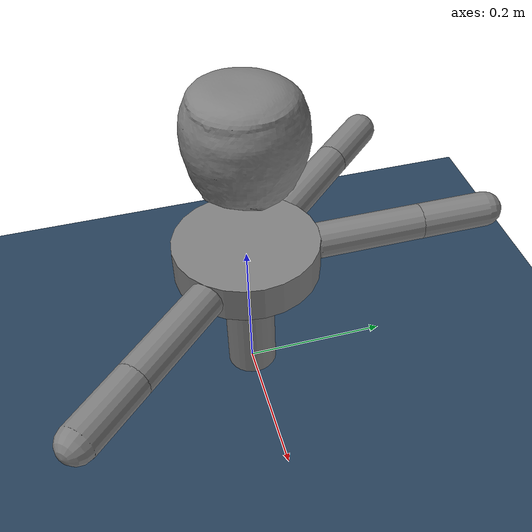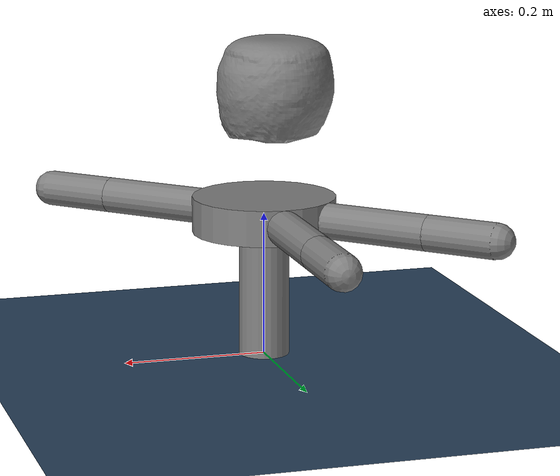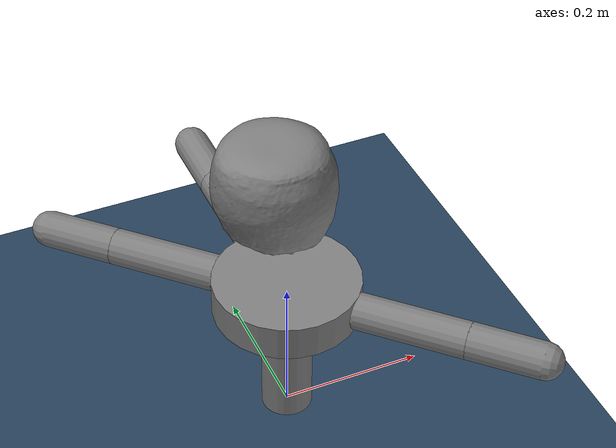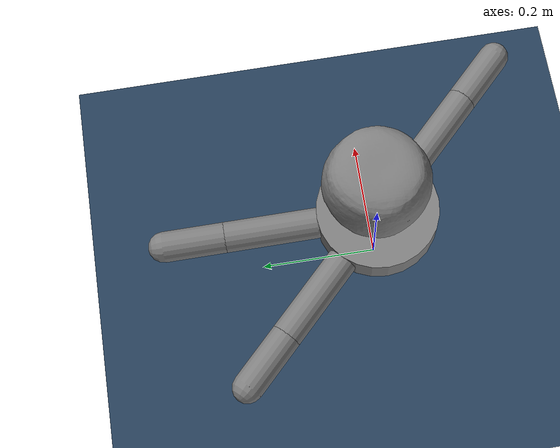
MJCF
<!-- BiRH Prototype 2 -->

<mujoco model="hand">
  <compiler coordinate="local" angle="radian"/>
  <option gravity="0 0 -9.81" integrator="RK4" timestep="0.0001">
    <flag contact="enable" energy="enable"/>
  </option>

  <asset>
    <texture name="grid" type="2d" builtin="checker" rgb1=".1 .2 .3" rgb2=".2 .3 .4" width="300" height="300"/>
    <material name="grid" texture="grid" texrepeat="8 8" reflectance=".2"/>

    <!-- Mesh of all the objects -->
    <mesh name="apple_mesh" file="/Users/stellaluna/apple.stl" scale="2 2 2"/>
  </asset>

  <worldbody>
    <geom size="1 1 .002" type="plane" material="grid" pos="0 0 0"/>
    <light pos="0 0 5"/>
    <camera name="camera" pos="0 -1 2" xyaxes="1 0 0 0 2 2"/>

    <!--  Forearm -->
    <body name="forearm" pos="0 0 0">
      <geom name="forearm" type="cylinder" pos="0 0 0.1" size="0.035 0.1"/>

        <!--  Hand  -->
        <body name="hand" pos="0 0 .2">
          <geom name="palm" type="cylinder" pos="0 0 0" size="0.1 0.025"/>

          <!--  Finger 1  -->
          <body name="finger1_pp" pos="0 .1 0">
            <joint name="mpj1" type="hinge" axis="1 0 0" damping="5" range="0 90"/>
            <geom name="pp1" type="capsule" fromto="0 0 0 0 .15 0" size="0.025" mass=".1"/>
              <body name="finger1_mp" pos="0 .15 0">
                <joint name="pipj1" type="hinge" axis="1 0 0" damping="5" range="0 90"/>
                <geom name="mp1" type="capsule" fromto="0 0 0 0 .1 0" size="0.025" mass=".1"/>
                  <geom name="finger1_pad" type="box" pos="0 0.08 0" size="0.02 0.015 0.01"
                        friction="1.5 0.1 0.001" rgba="0.8 0.6 0.4 1"/>
              </body>
          </body>

          <!--  Finger 2  -->
          <body name="finger2_pp" pos="-0.0707 0.0707 0">
            <joint name="mpj2" type="hinge" axis="1 1 0" damping="5" range="0 1.571"/>
            <geom name="pp2" type="capsule" fromto="0 0 0 -.106 .106 0" size="0.025" mass=".1"/>
              <body name="finger2_mp" pos="-.106 .106 0">
                <joint name="pipj2" type="hinge" axis="1 1 0" damping="5" range="0 1.571"/>
                <geom name="mp2" type="capsule" fromto="0 0 0 -0.0707 0.0707 0" size="0.025" mass=".1"/>
              </body>
          </body>

          <!-- Thumb -->
          <body name="thumb_pp" pos="0.0707 -0.0707 0">
            <joint name="mpjt" type="hinge" axis="1 1 0" damping="5" range="0 1.571"/>
            <joint name="abd_add" type="hinge" axis="0 0 1" damping="5" range="-0.5237 0.5237"/>
            <geom name="ppt" type="capsule" fromto="0 0 0 .106 -.106 0" size="0.025" mass=".1"/>
              <body name="fingert_mp" pos=".106 -.106 0">
                <joint name="pipjt" type="hinge" axis="1 1 0" damping="5" range="-1.571 0"/>
                <geom name="mpt" type="capsule" fromto="0 0 0 0.0707 -0.0707 0" size="0.025" mass=".1"/>
              </body>
          </body>

        </body>
    </body>

    <body name="apple" pos="0 0 .3">
      <freejoint/>
      <geom name="apple_geom" type="mesh" mesh="apple_mesh" mass="0.2"/>
    </body>

  </worldbody>

  <actuator>
    <!-- Finger 1 joint position actuators -->
    <position name="mpj1_motor" joint="mpj1" kp="200" ctrlrange="0 1.571"/>
    <position name="pipj1_motor" joint="pipj1"  kp="100" ctrlrange="0 1.571"/>

    <!-- Finger 2 joint position actuators -->
    <position name="mpj2_motor" joint="mpj2" kp="200" ctrlrange="0 1.571"/>
    <position name="pipj2_motor" joint="pipj2" kp="100" ctrlrange="0 1.571"/>

    <!-- Thumb joint position actuators -->
    <position name="mpjt_motor" joint="mpjt" kp="2000" ctrlrange="-1.571 0"/>
    <position name="abd_add_motor" joint="abd_add" kp="5000" ctrlrange="-1.2 1.2"/>
    <position name="pipjt_motor" joint="pipjt" kp="1000" ctrlrange="-1.571 0"/>

  </actuator>

</mujoco>
